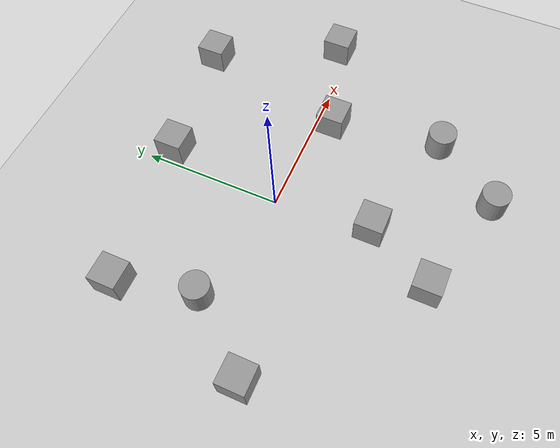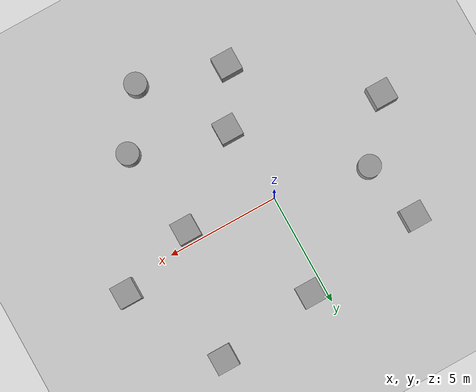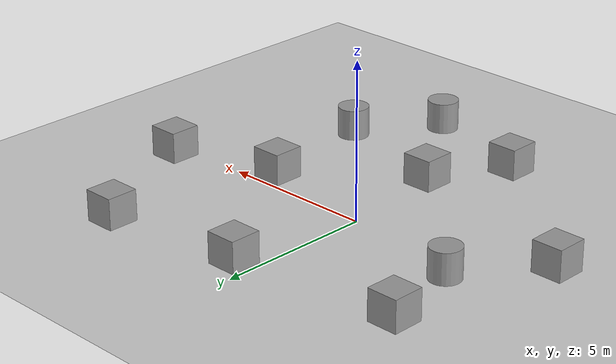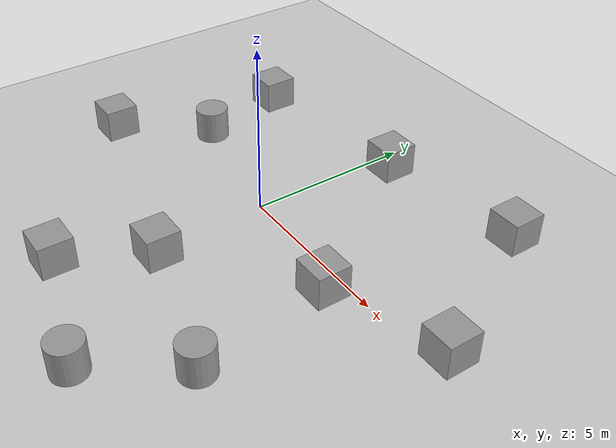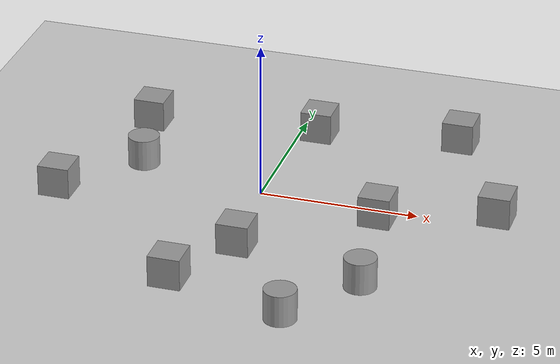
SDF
<sdf version="1.6">
 <world name="default">
  <light name="sun" type="directional">
   <pose>0 0 10 0 -0 0</pose>
   <diffuse>0.8 0.8 0.8 1</diffuse>
   <specular>0.2 0.2 0.2 1</specular>
   <attenuation>
    <range>1000</range>
    <constant>0.9</constant>
    <linear>0.01</linear>
    <quadratic>0.001</quadratic>
   </attenuation>
   <direction>-0.5 0.1 -0.9</direction>
  </light>
  <model name="ground_plane">
   <static>1</static>
   <link name="link">
    <collision name="collision">
     <geometry><plane><normal>0 0 1</normal><size>100 100</size></plane></geometry>
     <surface><friction><ode><mu>100</mu><mu2>50</mu2></ode></friction></surface>
    </collision>
    <visual name="visual">
     <cast_shadows>0</cast_shadows>
     <geometry><plane><normal>0 0 1</normal><size>100 100</size></plane></geometry>
     <material>
      <script><uri>file://media/materials/scripts/gazebo.material</uri><name>Gazebo/Grey</name></script>
     </material>
    </visual>
   </link>
  </model>
  <gravity>0 0 -9.8</gravity>
  <magnetic_field>6e-06 2.3e-05 -4.2e-05</magnetic_field>
  <atmosphere type="adiabatic"/>
  <physics name="default_physics" default="0" type="ode">
   <max_step_size>0.001</max_step_size>
   <real_time_factor>1</real_time_factor>
   <real_time_update_rate>1000</real_time_update_rate>
  </physics>
  <scene><ambient>0.4 0.4 0.4 1</ambient><background>0.7 0.7 0.7 1</background><shadows>1</shadows></scene>
  <audio><device>default</device></audio>
  <spherical_coordinates>
   <surface_model>EARTH_WGS84</surface_model>
   <latitude_deg>0</latitude_deg>
   <longitude_deg>0</longitude_deg>
   <elevation>0</elevation>
   <heading_deg>0</heading_deg>
  </spherical_coordinates>
  <model name="unit_box">
   <pose>0.318704 -3.45357 0.499995 0 1e-05 0</pose>
   <link name="link">
    <inertial>
     <mass>1</mass>
     <inertia>
      <ixx>0.166667</ixx>
      <ixy>0</ixy>
      <ixz>0</ixz>
      <iyy>0.166667</iyy>
      <iyz>0</iyz>
      <izz>0.166667</izz>
     </inertia>
    </inertial>
    <collision name="collision"><geometry><box><size>1 1 1</size></box></geometry></collision>
    <visual name="visual">
     <geometry><box><size>1 1 1</size></box></geometry>
     <material>
      <script><name>Gazebo/Grey</name><uri>file://media/materials/scripts/gazebo.material</uri></script>
     </material>
    </visual>
   </link>
  </model>
  <model name="unit_box_0">
   <pose>3.90274 -0.607134 0.499995 -1e-05 -0 -0</pose>
   <link name="link">
    <inertial>
     <mass>1</mass>
     <inertia>
      <ixx>0.166667</ixx>
      <ixy>0</ixy>
      <ixz>0</ixz>
      <iyy>0.166667</iyy>
      <iyz>0</iyz>
      <izz>0.166667</izz>
     </inertia>
    </inertial>
    <collision name="collision"><geometry><box><size>1 1 1</size></box></geometry></collision>
    <visual name="visual">
     <geometry><box><size>1 1 1</size></box></geometry>
     <material>
      <script><name>Gazebo/Grey</name><uri>file://media/materials/scripts/gazebo.material</uri></script>
     </material>
    </visual>
   </link>
  </model>
  <model name="unit_box_1">
   <pose>-6.07158 -1.60273 0.499995 0 1e-05 0</pose>
   <link name="link">
    <inertial>
     <mass>1</mass>
     <inertia>
      <ixx>0.166667</ixx>
      <ixy>0</ixy>
      <ixz>0</ixz>
      <iyy>0.166667</iyy>
      <iyz>0</iyz>
      <izz>0.166667</izz>
     </inertia>
    </inertial>
    <collision name="collision"><geometry><box><size>1 1 1</size></box></geometry></collision>
    <visual name="visual">
     <geometry><box><size>1 1 1</size></box></geometry>
     <material>
      <script><name>Gazebo/Grey</name><uri>file://media/materials/scripts/gazebo.material</uri></script>
     </material>
    </visual>
   </link>
  </model>
  <model name="unit_box_2">
   <pose>-4.75315 3.56237 0.499995 -1e-05 -0 -0</pose>
   <link name="link">
    <inertial>
     <mass>1</mass>
     <inertia>
      <ixx>0.166667</ixx>
      <ixy>0</ixy>
      <ixz>0</ixz>
      <iyy>0.166667</iyy>
      <iyz>0</iyz>
      <izz>0.166667</izz>
     </inertia>
    </inertial>
    <collision name="collision"><geometry><box><size>1 1 1</size></box></geometry></collision>
    <visual name="visual">
     <geometry><box><size>1 1 1</size></box></geometry>
     <material>
      <script><name>Gazebo/Grey</name><uri>file://media/materials/scripts/gazebo.material</uri></script>
     </material>
    </visual>
   </link>
  </model>
  <model name="unit_box_3">
   <pose>0.638661 4.25521 0.499995 0 1e-05 0</pose>
   <link name="link">
    <inertial>
     <mass>1</mass>
     <inertia>
      <ixx>0.166667</ixx>
      <ixy>0</ixy>
      <ixz>0</ixz>
      <iyy>0.166667</iyy>
      <iyz>0</iyz>
      <izz>0.166667</izz>
     </inertia>
    </inertial>
    <collision name="collision"><geometry><box><size>1 1 1</size></box></geometry></collision>
    <visual name="visual">
     <geometry><box><size>1 1 1</size></box></geometry>
     <material>
      <script><name>Gazebo/Grey</name><uri>file://media/materials/scripts/gazebo.material</uri></script>
     </material>
    </visual>
   </link>
  </model>
  <model name="unit_box_4">
   <pose>5.13417 4.88788 0.499995 -1e-05 -0 -0</pose>
   <link name="link">
    <inertial>
     <mass>1</mass>
     <inertia>
      <ixx>0.166667</ixx>
      <ixy>0</ixy>
      <ixz>0</ixz>
      <iyy>0.166667</iyy>
      <iyz>0</iyz>
      <izz>0.166667</izz>
     </inertia>
    </inertial>
    <collision name="collision"><geometry><box><size>1 1 1</size></box></geometry></collision>
    <visual name="visual">
     <geometry><box><size>1 1 1</size></box></geometry>
     <material>
      <script><name>Gazebo/Grey</name><uri>file://media/materials/scripts/gazebo.material</uri></script>
     </material>
    </visual>
   </link>
  </model>
  <model name="unit_box_5">
   <pose>-0.987451 -5.88104 0.499995 0 1e-05 0</pose>
   <link name="link">
    <inertial>
     <mass>1</mass>
     <inertia>
      <ixx>0.166667</ixx>
      <ixy>0</ixy>
      <ixz>0</ixz>
      <iyy>0.166667</iyy>
      <iyz>0</iyz>
      <izz>0.166667</izz>
     </inertia>
    </inertial>
    <collision name="collision"><geometry><box><size>1 1 1</size></box></geometry></collision>
    <visual name="visual">
     <geometry><box><size>1 1 1</size></box></geometry>
     <material>
      <script><name>Gazebo/Grey</name><uri>file://media/materials/scripts/gazebo.material</uri></script>
     </material>
    </visual>
   </link>
  </model>
  <model name="unit_box_6">
   <pose>7.3658 0.50192 0.499995 -1e-05 -0 -0</pose>
   <link name="link">
    <inertial>
     <mass>1</mass>
     <inertia>
      <ixx>0.166667</ixx>
      <ixy>0</ixy>
      <ixz>0</ixz>
      <iyy>0.166667</iyy>
      <iyz>0</iyz>
      <izz>0.166667</izz>
     </inertia>
    </inertial>
    <collision name="collision"><geometry><box><size>1 1 1</size></box></geometry></collision>
    <visual name="visual">
     <geometry><box><size>1 1 1</size></box></geometry>
     <material>
      <script><name>Gazebo/Grey</name><uri>file://media/materials/scripts/gazebo.material</uri></script>
     </material>
    </visual>
   </link>
  </model>
  <model name="unit_cylinder">
   <pose>4.47577 -4.57963 0.499997 3e-06 4e-06 -0</pose>
   <link name="link">
    <inertial>
     <mass>1</mass>
     <inertia><ixx>0.145833</ixx><ixy>0</ixy><ixz>0</ixz><iyy>0.145833</iyy><iyz>0</iyz><izz>0.125</izz></inertia>
    </inertial>
    <collision name="collision">
     <geometry><cylinder><radius>0.5</radius><length>1</length></cylinder></geometry>
    </collision>
    <visual name="visual">
     <geometry><cylinder><radius>0.5</radius><length>1</length></cylinder></geometry>
     <material>
      <script><name>Gazebo/Grey</name><uri>file://media/materials/scripts/gazebo.material</uri></script>
     </material>
    </visual>
   </link>
  </model>
  <model name="unit_cylinder_0">
   <pose>2.7715 -6.99888 0.499993 -3e-06 -4e-06 -0</pose>
   <link name="link">
    <inertial>
     <mass>1</mass>
     <inertia><ixx>0.145833</ixx><ixy>0</ixy><ixz>0</ixz><iyy>0.145833</iyy><iyz>0</iyz><izz>0.125</izz></inertia>
    </inertial>
    <collision name="collision">
     <geometry><cylinder><radius>0.5</radius><length>1</length></cylinder></geometry>
    </collision>
    <visual name="visual">
     <geometry><cylinder><radius>0.5</radius><length>1</length></cylinder></geometry>
     <material>
      <script><name>Gazebo/Grey</name><uri>file://media/materials/scripts/gazebo.material</uri></script>
     </material>
    </visual>
   </link>
  </model>
  <model name="unit_cylinder_1">
   <pose>-4.12021 0.820119 0.499997 3e-06 4e-06 -0</pose>
   <link name="link">
    <inertial>
     <mass>1</mass>
     <inertia><ixx>0.145833</ixx><ixy>0</ixy><ixz>0</ixz><iyy>0.145833</iyy><iyz>0</iyz><izz>0.125</izz></inertia>
    </inertial>
    <collision name="collision">
     <geometry><cylinder><radius>0.5</radius><length>1</length></cylinder></geometry>
    </collision>
    <visual name="visual">
     <geometry><cylinder><radius>0.5</radius><length>1</length></cylinder></geometry>
     <material>
      <script><name>Gazebo/Grey</name><uri>file://media/materials/scripts/gazebo.material</uri></script>
     </material>
    </visual>
   </link>
  </model>
 </world>
</sdf>
